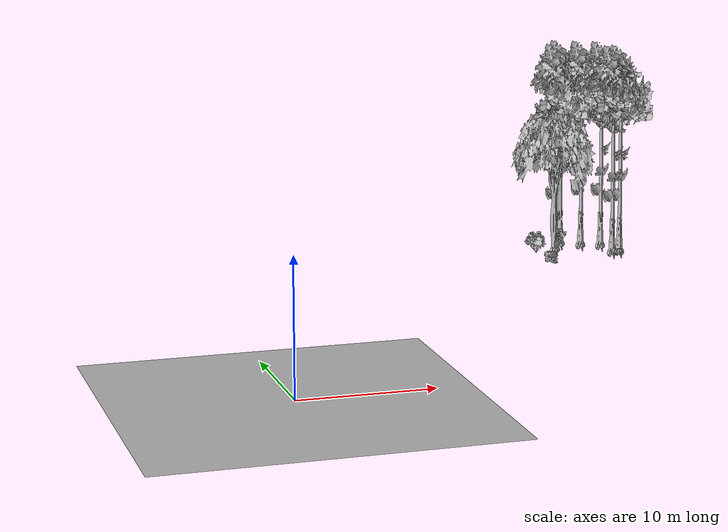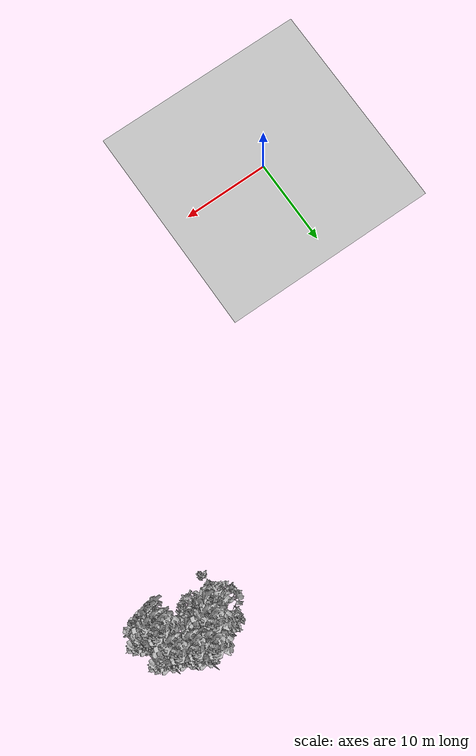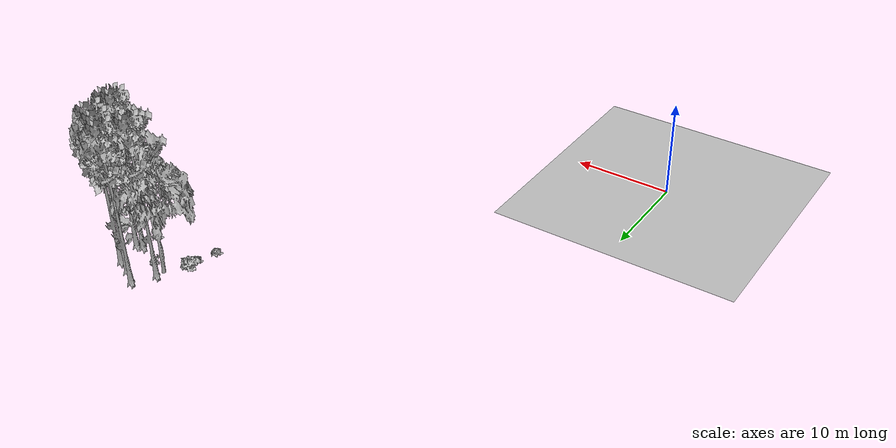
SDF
<sdf version="1.7">
 <world name="default">
  <model name="ground_plane">
   <static>1</static>
   <link name="link">
    <collision name="collision">
     <pose>-50 0 0 0 -0 0</pose>
     <geometry><plane><normal>0 0 1</normal><size>80 80</size></plane></geometry>
     <surface><contact><ode><min_depth>0.01</min_depth><max_vel>0</max_vel></ode></contact></surface>
    </collision>
    <visual name="grass">
     <cast_shadows>0</cast_shadows>
     <geometry>
      <mesh>
       <scale>0.46714285714285714 0.46714285714285714 0.1</scale>
       <uri>file://grass_plane/meshes/grass_plane.dae</uri>
      </mesh>
     </geometry>
    </visual>
   </link>
  </model>
  <model name="Tree 30">
   <static>1</static>
   <pose>38.099311631252164 35.695586968816116 0 1.57079 -0 0</pose>
   <link name="link">
    <collision name="collision">
     <geometry><mesh><scale>3.5 5 3.5</scale><uri>model://tree_9/meshes/tree_9.obj</uri></mesh></geometry>
    </collision>
    <visual name="visual">
     <geometry><mesh><scale>3.5 5 3.5</scale><uri>model://tree_9/meshes/tree_9.obj</uri></mesh></geometry>
    </visual>
   </link>
  </model>
  <model name="Tree 210">
   <static>1</static>
   <pose>37.3917079166515 38.28808011799596 0 1.57079 -0 0</pose>
   <link name="link">
    <collision name="collision">
     <geometry><mesh><scale>3.5 5 3.5</scale><uri>model://tree_9/meshes/tree_9.obj</uri></mesh></geometry>
    </collision>
    <visual name="visual">
     <geometry><mesh><scale>3.5 5 3.5</scale><uri>model://tree_9/meshes/tree_9.obj</uri></mesh></geometry>
    </visual>
   </link>
  </model>
  <model name="Tree 255">
   <static>1</static>
   <pose>33.07559410479081 37.963082114287786 0 1.57079 -0 0</pose>
   <link name="link">
    <collision name="collision">
     <geometry><mesh><scale>3.5 5 3.5</scale><uri>model://tree_9/meshes/tree_9.obj</uri></mesh></geometry>
    </collision>
    <visual name="visual">
     <geometry><mesh><scale>3.5 5 3.5</scale><uri>model://tree_9/meshes/tree_9.obj</uri></mesh></geometry>
    </visual>
   </link>
  </model>
  <model name="Tree 500">
   <static>1</static>
   <pose>35.81874157007937 38.97305722386446 0 1.57079 -0 0</pose>
   <link name="link">
    <collision name="collision">
     <geometry><mesh><scale>3.5 5 3.5</scale><uri>model://tree_9/meshes/tree_9.obj</uri></mesh></geometry>
    </collision>
    <visual name="visual">
     <geometry><mesh><scale>3.5 5 3.5</scale><uri>model://tree_9/meshes/tree_9.obj</uri></mesh></geometry>
    </visual>
   </link>
  </model>
  <model name="Tree 522">
   <static>1</static>
   <pose>37.37735563061132 35.55401402197462 0 1.57079 -0 0</pose>
   <link name="link">
    <collision name="collision">
     <geometry><mesh><scale>3.5 5 3.5</scale><uri>model://tree_9/meshes/tree_9.obj</uri></mesh></geometry>
    </collision>
    <visual name="visual">
     <geometry><mesh><scale>3.5 5 3.5</scale><uri>model://tree_9/meshes/tree_9.obj</uri></mesh></geometry>
    </visual>
   </link>
  </model>
  <model name="Tree 558">
   <static>1</static>
   <pose>32.60404948782899 37.332247133712826 0 1.57079 -0 0</pose>
   <link name="link">
    <collision name="collision">
     <geometry><mesh><scale>3.5 5 3.5</scale><uri>model://tree_2/meshes/tree_2.obj</uri></mesh></geometry>
    </collision>
    <visual name="visual">
     <geometry><mesh><scale>3.5 5 3.5</scale><uri>model://tree_2/meshes/tree_2.obj</uri></mesh></geometry>
    </visual>
   </link>
  </model>
  <model name="Tree 595">
   <static>1</static>
   <pose>34.2700094145613 39.92710389997751 0 1.57079 -0 0</pose>
   <link name="link">
    <collision name="collision">
     <geometry><mesh><scale>3.5 5 3.5</scale><uri>model://tree_9/meshes/tree_9.obj</uri></mesh></geometry>
    </collision>
    <visual name="visual">
     <geometry><mesh><scale>3.5 5 3.5</scale><uri>model://tree_9/meshes/tree_9.obj</uri></mesh></geometry>
    </visual>
   </link>
  </model>
  <model name="Bush 69">
   <static>1</static>
   <pose>37.13854850306225 33.8180933827264 0 1.57079 -0 0</pose>
   <link name="link">
    <collision name="collision">
     <geometry><mesh><scale>2 2 2</scale><uri>model://bush_2/meshes/bush_2.obj</uri></mesh></geometry>
     <surface><contact><collide_without_contact>false</collide_without_contact></contact></surface>
    </collision>
    <visual name="visual">
     <geometry><mesh><scale>2 2 2</scale><uri>model://bush_2/meshes/bush_2.obj</uri></mesh></geometry>
    </visual>
   </link>
  </model>
  <model name="Bush 198">
   <static>1</static>
   <pose>30.684791054386793 32.54994057195522 0 1.57079 -0 0</pose>
   <link name="link">
    <collision name="collision">
     <geometry><mesh><scale>2 2 2</scale><uri>model://bush_2/meshes/bush_2.obj</uri></mesh></geometry>
     <surface><contact><collide_without_contact>false</collide_without_contact></contact></surface>
    </collision>
    <visual name="visual">
     <geometry><mesh><scale>2 2 2</scale><uri>model://bush_2/meshes/bush_2.obj</uri></mesh></geometry>
    </visual>
   </link>
  </model>
  <model name="Bush 320">
   <static>1</static>
   <pose>30.559513423749962 35.8631747630849 0 1.57079 -0 0</pose>
   <link name="link">
    <collision name="collision">
     <geometry><mesh><scale>2 2 2</scale><uri>model://bush_1/meshes/bush_1.obj</uri></mesh></geometry>
     <surface><contact><collide_without_contact>false</collide_without_contact></contact></surface>
    </collision>
    <visual name="visual">
     <geometry><mesh><scale>2 2 2</scale><uri>model://bush_1/meshes/bush_1.obj</uri></mesh></geometry>
    </visual>
   </link>
  </model>
  <model name="Bush 363">
   <static>1</static>
   <pose>33.412448529766095 37.69225727939886 0 1.57079 -0 0</pose>
   <link name="link">
    <collision name="collision">
     <geometry><mesh><scale>2 2 2</scale><uri>model://bush_5/meshes/bush_5.obj</uri></mesh></geometry>
     <surface><contact><collide_without_contact>false</collide_without_contact></contact></surface>
    </collision>
    <visual name="visual">
     <geometry><mesh><scale>2 2 2</scale><uri>model://bush_5/meshes/bush_5.obj</uri></mesh></geometry>
    </visual>
   </link>
  </model>
  <model name="Bush 422">
   <static>1</static>
   <pose>31.32647891832329 34.46690575672223 0 1.57079 -0 0</pose>
   <link name="link">
    <collision name="collision">
     <geometry><mesh><scale>2 2 2</scale><uri>model://bush_2/meshes/bush_2.obj</uri></mesh></geometry>
     <surface><contact><collide_without_contact>false</collide_without_contact></contact></surface>
    </collision>
    <visual name="visual">
     <geometry><mesh><scale>2 2 2</scale><uri>model://bush_2/meshes/bush_2.obj</uri></mesh></geometry>
    </visual>
   </link>
  </model>
 </world>
</sdf>
